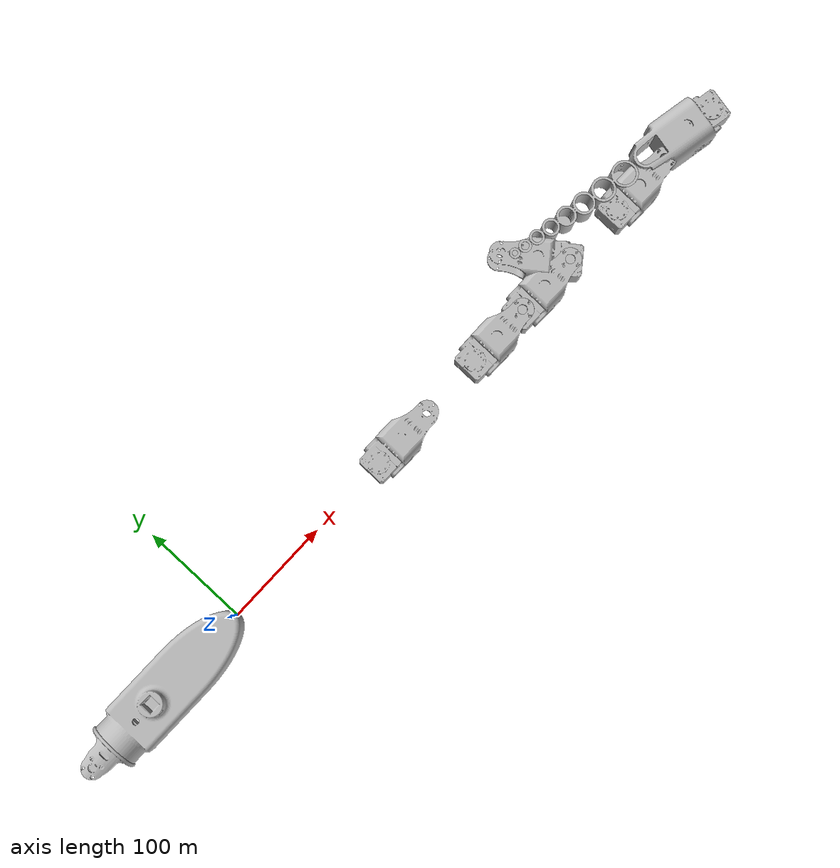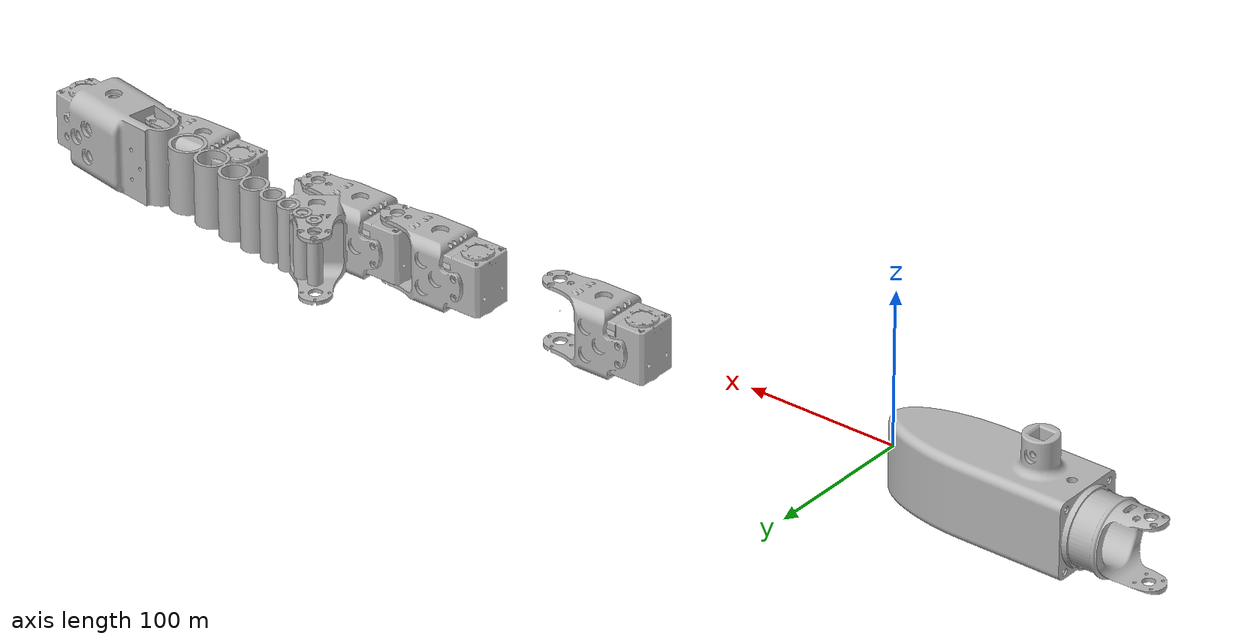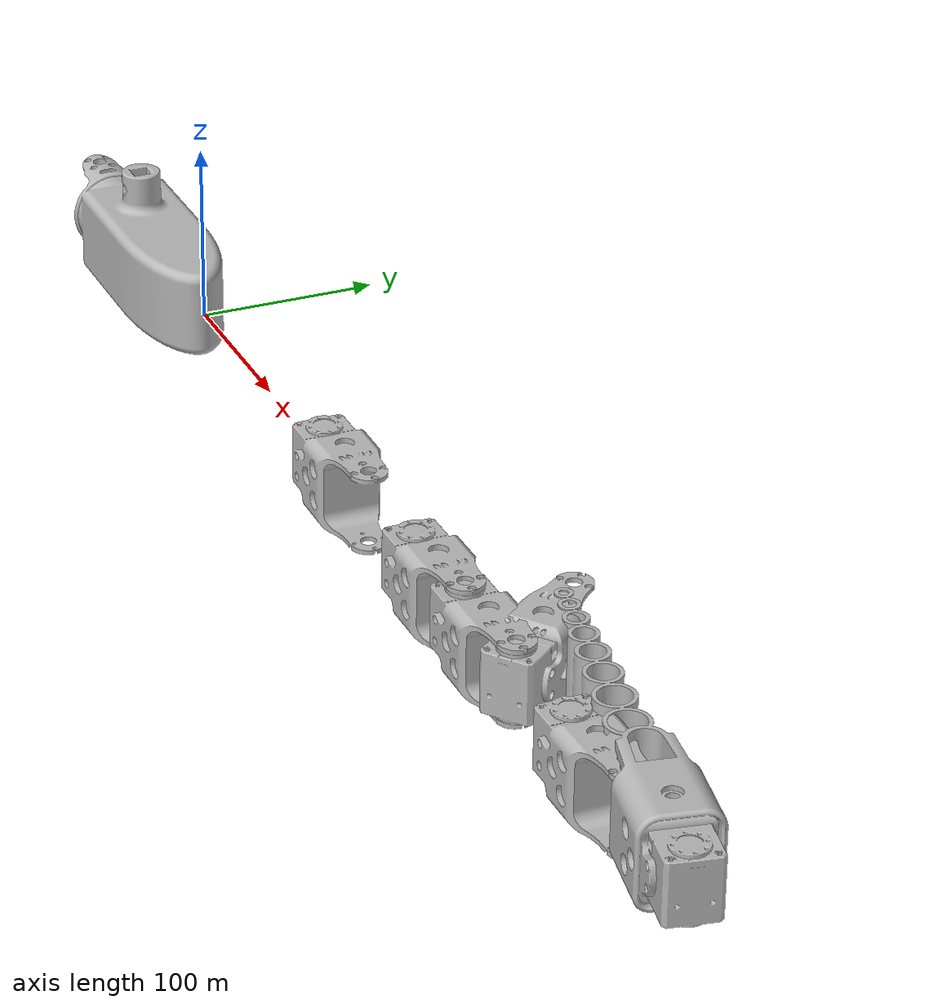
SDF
<?xml version="1.0" ?>
<sdf version="1.6">
	<world name="world">
		<model name="1guilla">
			<pose>0.0 0.0 0.0 0.0 0.0 0.0</pose>
			<link name="link0">
				<pose>1.14362 1.55095e-05 0 0 0 3.141592264175415</pose>
				<inertial>
					<pose>-89.5942 -0.261623 2.84499 0 0 0</pose>
					<mass>0.0980593</mass>
					<density>800.0</density>
					<inertia>
						<ixx>61.4036</ixx>
						<ixy>-0.0433857</ixy>
						<ixz>-1.37201</ixz>
						<iyy>234.707</iyy>
						<iyz>-0.0218913</iyz>
						<izz>227.299</izz>
					</inertia>
				</inertial>
				<collision name="link0_collision">
					<pose>0.0 0.0 0.0 0.0 0.0 0.0</pose>
					<geometry>
						<mesh>
							<uri>../sdf/meshes/link0_collision.stl</uri>
							<scale>1.0 1.0 1.0</scale>
						</mesh>
					</geometry>
				</collision>
				<visual name="link0_visual">
					<pose>0.0 0.0 0.0 0.0 0.0 0.0</pose>
					<geometry>
						<mesh>
							<uri>../sdf/meshes/link0.obj</uri>
							<scale>1.0 1.0 1.0</scale>
						</mesh>
					</geometry>
				</visual>
			</link>
			<link name="link1">
				<pose>178.144 6.11143e-06 0 -0.00020312992273829877 -0.007018861826509237 2.9615588188171387</pose>
				<inertial>
					<pose>-15.9564 -3.05616 -0.848421 0 0 0</pose>
					<mass>0.0481587</mass>
					<density>800.0</density>
					<inertia>
						<ixx>10.9995</ixx>
						<ixy>-1.3845</ixy>
						<ixz>0.0901062</ixz>
						<iyy>18.4066</iyy>
						<iyz>0.0154876</iyz>
						<izz>15.7937</izz>
					</inertia>
				</inertial>
				<collision name="link1_collision">
					<pose>0.0 0.0 0.0 0.0 0.0 0.0</pose>
					<geometry>
						<mesh>
							<uri>../sdf/meshes/link1_collision.stl</uri>
							<scale>1.0 1.0 1.0</scale>
						</mesh>
					</geometry>
				</collision>
				<visual name="link1_visual">
					<pose>0.0 0.0 0.0 0.0 0.0 0.0</pose>
					<geometry>
						<mesh>
							<uri>../sdf/meshes/link1.obj</uri>
							<scale>1.0 1.0 1.0</scale>
						</mesh>
					</geometry>
				</visual>
			</link>
			<link name="link2">
				<pose>238.244 -5.2184e-06 0 0 0 2.7555055618286133</pose>
				<inertial>
					<pose>-15.0702 -6.27307 -1.05285 0 0 0</pose>
					<mass>0.048158</mass>
					<density>800.0</density>
					<inertia>
						<ixx>11.8816</ixx>
						<ixy>-2.77014</ixy>
						<ixz>0.0844704</ixz>
						<iyy>17.5233</iyy>
						<iyz>0.0357155</iyz>
						<izz>15.7928</izz>
					</inertia>
				</inertial>
				<collision name="link2_collision">
					<pose>0.0 0.0 0.0 0.0 0.0 0.0</pose>
					<geometry>
						<mesh>
							<uri>../sdf/meshes/link2_collision.stl</uri>
							<scale>1.0 1.0 1.0</scale>
						</mesh>
					</geometry>
				</collision>
				<visual name="link2_visual">
					<pose>0.0 0.0 0.0 0.0 0.0 0.0</pose>
					<geometry>
						<mesh>
							<uri>../sdf/meshes/link2.obj</uri>
							<scale>1.0 1.0 1.0</scale>
						</mesh>
					</geometry>
				</visual>
			</link>
			<link name="link3">
				<pose>298.244 -1.04638e-05 0 0 0 2.407109498977661</pose>
				<inertial>
					<pose>-11.9866 -11.1147 -0.71489 0 0 0</pose>
					<mass>0.0481587</mass>
					<density>800.0</density>
					<inertia>
						<ixx>14.3209</ixx>
						<ixy>-3.93408</ixy>
						<ixz>0.0670337</ixz>
						<iyy>15.082</iyy>
						<iyz>0.0654121</iyz>
						<izz>15.7915</izz>
					</inertia>
				</inertial>
				<collision name="link3_collision">
					<pose>0.0 0.0 0.0 0.0 0.0 0.0</pose>
					<geometry>
						<mesh>
							<uri>../sdf/meshes/link3_collision.stl</uri>
							<scale>1.0 1.0 1.0</scale>
						</mesh>
					</geometry>
				</collision>
				<visual name="link3_visual">
					<pose>0.0 0.0 0.0 0.0 0.0 0.0</pose>
					<geometry>
						<mesh>
							<uri>../sdf/meshes/link3.obj</uri>
							<scale>1.0 1.0 1.0</scale>
						</mesh>
					</geometry>
				</visual>
			</link>
			<link name="link4">
				<pose>358.144 4.89302e-06 0 0 0 2.227351427078247</pose>
				<inertial>
					<pose>-9.83689 -13.0517 -0.345748 0 0 0</pose>
					<mass>0.0481587</mass>
					<density>800.0</density>
					<inertia>
						<ixx>15.6893</ixx>
						<ixy>-3.82688</ixy>
						<ixz>0.0550418</ixz>
						<iyy>13.7127</iyy>
						<iyz>0.0772906</iyz>
						<izz>15.7913</izz>
					</inertia>
				</inertial>
				<collision name="link4_collision">
					<pose>0.0 0.0 0.0 0.0 0.0 0.0</pose>
					<geometry>
						<mesh>
							<uri>../sdf/meshes/link4_collision.stl</uri>
							<scale>1.0 1.0 1.0</scale>
						</mesh>
					</geometry>
				</collision>
				<visual name="link4_visual">
					<pose>0.0 0.0 0.0 0.0 0.0 0.0</pose>
					<geometry>
						<mesh>
							<uri>../sdf/meshes/link4.obj</uri>
							<scale>1.0 1.0 1.0</scale>
						</mesh>
					</geometry>
				</visual>
			</link>
			<link name="link5">
				<pose>418.044 -2.04234e-06 0 0 0 2.2303614616394043</pose>
				<inertial>
					<pose>-10.0078 -12.9725 0.0378456 0 0 0</pose>
					<mass>0.0481586</mass>
					<density>800.0</density>
					<inertia>
						<ixx>15.6893</ixx>
						<ixy>-3.82686</ixy>
						<ixz>0.0549524</ixz>
						<iyy>13.7126</iyy>
						<iyz>0.0775163</iyz>
						<izz>15.7912</izz>
					</inertia>
				</inertial>
				<collision name="link5_collision">
					<pose>0.0 0.0 0.0 0.0 0.0 0.0</pose>
					<geometry>
						<mesh>
							<uri>../sdf/meshes/link5_collision.stl</uri>
							<scale>1.0 1.0 1.0</scale>
						</mesh>
					</geometry>
				</collision>
				<visual name="link5_visual">
					<pose>0.0 0.0 0.0 0.0 0.0 0.0</pose>
					<geometry>
						<mesh>
							<uri>../sdf/meshes/link5.obj</uri>
							<scale>1.0 1.0 1.0</scale>
						</mesh>
					</geometry>
				</visual>
			</link>
			<link name="link6">
				<pose>478.244 1.14377e-06 0 0 0 2.4074954986572266</pose>
				<inertial>
					<pose>-11.9973 -10.8101 0.37306 0 0 0</pose>
					<mass>0.0481587</mass>
					<density>800.0</density>
					<inertia>
						<ixx>14.3209</ixx>
						<ixy>-3.9341</ixy>
						<ixz>0.0668505</ixz>
						<iyy>15.082</iyy>
						<iyz>0.0658543</iyz>
						<izz>15.7916</izz>
					</inertia>
				</inertial>
				<collision name="link6_collision">
					<pose>0.0 0.0 0.0 0.0 0.0 0.0</pose>
					<geometry>
						<mesh>
							<uri>../sdf/meshes/link6_collision.stl</uri>
							<scale>1.0 1.0 1.0</scale>
						</mesh>
					</geometry>
				</collision>
				<visual name="link6_visual">
					<pose>0.0 0.0 0.0 0.0 0.0 0.0</pose>
					<geometry>
						<mesh>
							<uri>../sdf/meshes/link6.obj</uri>
							<scale>1.0 1.0 1.0</scale>
						</mesh>
					</geometry>
				</visual>
			</link>
			<link name="link7">
				<pose>538.244 -3.14452e-05 0 0 0 2.577025890350342</pose>
				<inertial>
					<pose>-13.6041 -8.71109 0.820772 0 0 0</pose>
					<mass>0.0481589</mass>
					<density>800.0</density>
					<inertia>
						<ixx>12.9987</ixx>
						<ixy>-3.56724</ixy>
						<ixz>0.0764408</ixz>
						<iyy>16.4049</iyy>
						<iyz>0.0520646</iyz>
						<izz>15.7917</izz>
					</inertia>
				</inertial>
				<collision name="link7_collision">
					<pose>0.0 0.0 0.0 0.0 0.0 0.0</pose>
					<geometry>
						<mesh>
							<uri>../sdf/meshes/link7_collision.stl</uri>
							<scale>1.0 1.0 1.0</scale>
						</mesh>
					</geometry>
				</collision>
				<visual name="link7_visual">
					<pose>0.0 0.0 0.0 0.0 0.0 0.0</pose>
					<geometry>
						<mesh>
							<uri>../sdf/meshes/link7.obj</uri>
							<scale>1.0 1.0 1.0</scale>
						</mesh>
					</geometry>
				</visual>
			</link>
			<link name="link8">
				<pose>598.044 -4.40343e-05 0 0 0 2.959585428237915</pose>
				<inertial>
					<pose>-58.3061 -10.8215 2.0319 0 0 0</pose>
					<mass>0.103076</mass>
					<density>800.0</density>
					<inertia>
						<ixx>40.9682</ixx>
						<ixy>-65.0471</ixy>
						<ixz>1.34608</ixz>
						<iyy>371.527</iyy>
						<iyz>0.238632</iyz>
						<izz>375.544</izz>
					</inertia>
				</inertial>
				<collision name="link8_collision">
					<pose>0.0 0.0 0.0 0.0 0.0 0.0</pose>
					<geometry>
						<mesh>
							<uri>../sdf/meshes/link8_collision.stl</uri>
							<scale>1.0 1.0 1.0</scale>
						</mesh>
					</geometry>
				</collision>
				<visual name="link8_visual">
					<pose>0.0 0.0 0.0 0.0 0.0 0.0</pose>
					<geometry>
						<mesh>
							<uri>../sdf/meshes/link8.obj</uri>
							<scale>1.0 1.0 1.0</scale>
						</mesh>
					</geometry>
				</visual>
			</link>
			<joint name="joint_body_00" type="revolute">
				<parent>link0</parent>
				<child>link1</child>
				<pose>0 0 0 0 0 0</pose>
				<axis>
					<xyz>0.0 0.0 -1.0</xyz>
					<limit>
						<lower>-1.5708</lower>
						<upper>1.5708</upper>
					</limit>
				</axis>
			</joint>
			<joint name="joint_body_01" type="revolute">
				<parent>link1</parent>
				<child>link2</child>
				<pose>0 0 0 0 0 0</pose>
				<axis>
					<xyz>0.0 0.0 -1.0</xyz>
					<limit>
						<lower>-1.5708</lower>
						<upper>1.5708</upper>
					</limit>
				</axis>
			</joint>
			<joint name="joint_body_02" type="revolute">
				<parent>link2</parent>
				<child>link3</child>
				<pose>0 0 0 0 0 0</pose>
				<axis>
					<xyz>0.0 0.0 -1.0</xyz>
					<limit>
						<lower>-1.5708</lower>
						<upper>1.5708</upper>
					</limit>
				</axis>
			</joint>
			<joint name="joint_body_03" type="revolute">
				<parent>link3</parent>
				<child>link4</child>
				<pose>0 0 0 0 0 0</pose>
				<axis>
					<xyz>0.0 0.0 -1.0</xyz>
					<limit>
						<lower>-1.5708</lower>
						<upper>1.5708</upper>
					</limit>
				</axis>
			</joint>
			<joint name="joint_body_04" type="revolute">
				<parent>link4</parent>
				<child>link5</child>
				<pose>0 0 0 0 0 0</pose>
				<axis>
					<xyz>0.0 0.0 -1.0</xyz>
					<limit>
						<lower>-1.5708</lower>
						<upper>1.5708</upper>
					</limit>
				</axis>
			</joint>
			<joint name="joint_body_05" type="revolute">
				<parent>link5</parent>
				<child>link6</child>
				<pose>0 0 0 0 0 0</pose>
				<axis>
					<xyz>0.0 0.0 -1.0</xyz>
					<limit>
						<lower>-1.5708</lower>
						<upper>1.5708</upper>
					</limit>
				</axis>
			</joint>
			<joint name="joint_body_06" type="revolute">
				<parent>link6</parent>
				<child>link7</child>
				<pose>0 0 0 0 0 0</pose>
				<axis>
					<xyz>0.0 0.0 -1.0</xyz>
					<limit>
						<lower>-1.5708</lower>
						<upper>1.5708</upper>
					</limit>
				</axis>
			</joint>
			<joint name="joint_body_07" type="revolute">
				<parent>link7</parent>
				<child>link8</child>
				<pose>0 0 0 0 0 0</pose>
				<axis>
					<xyz>0.0 0.0 -1.0</xyz>
					<limit>
						<lower>-1.5708</lower>
						<upper>1.5708</upper>
					</limit>
				</axis>
			</joint>
			<linkend name="link8">
				<pose>814.156 -1.55095e-05 0</pose>
			</linkend>
		</model>
	</world>
</sdf>
